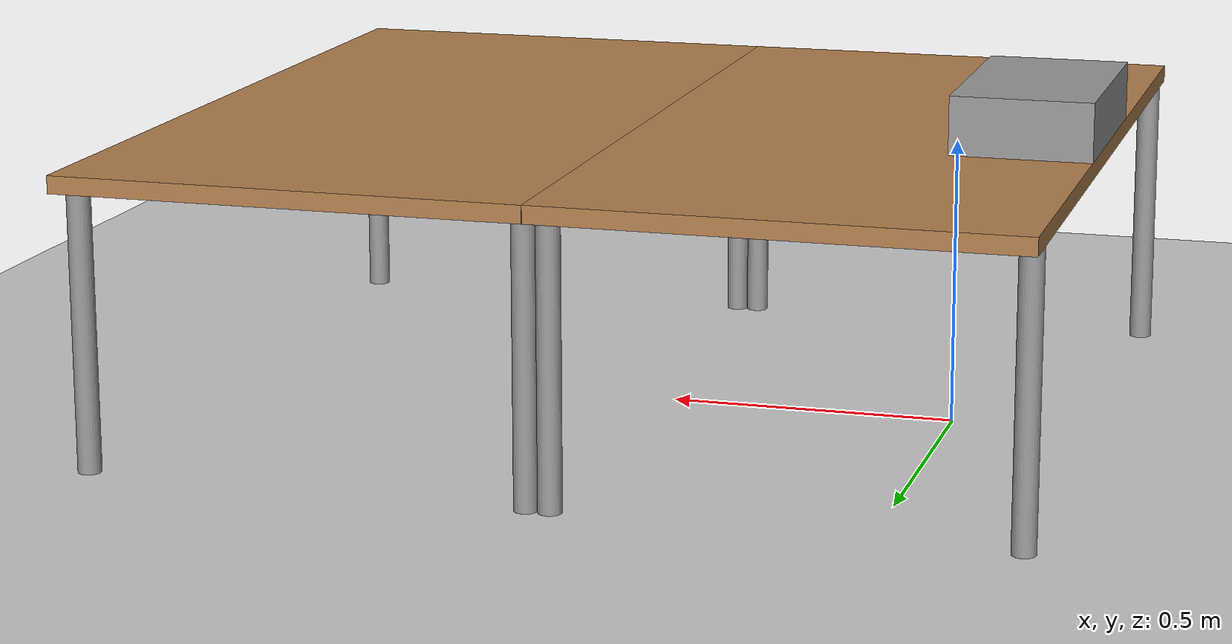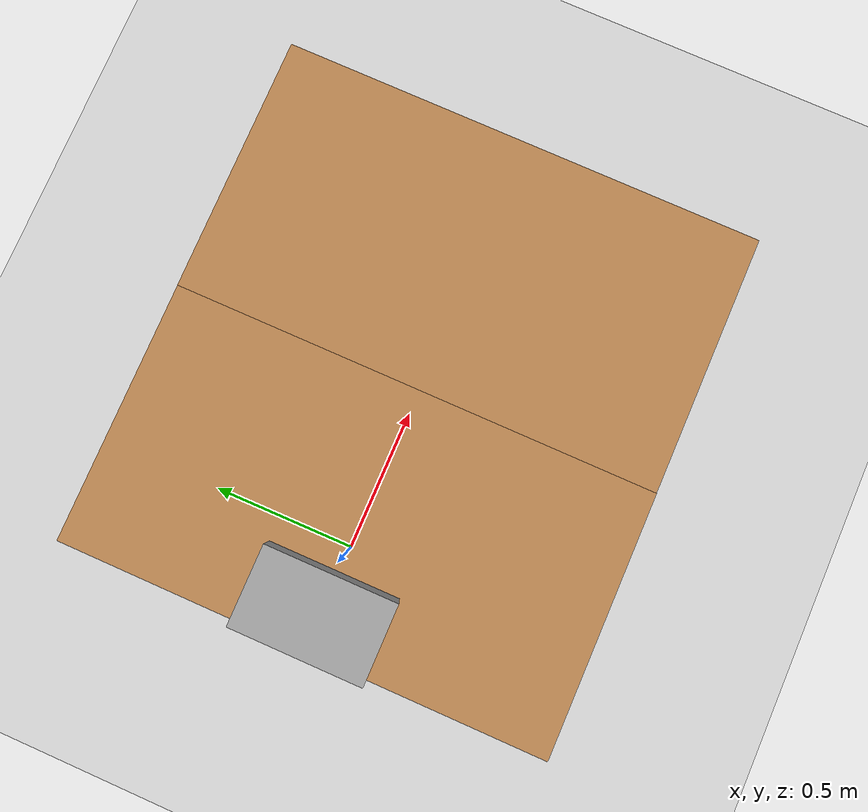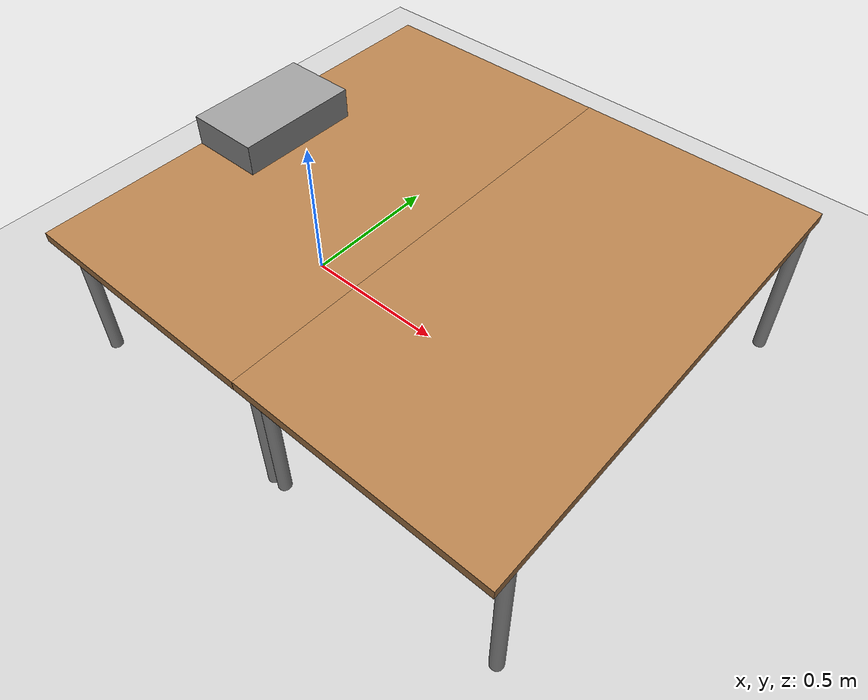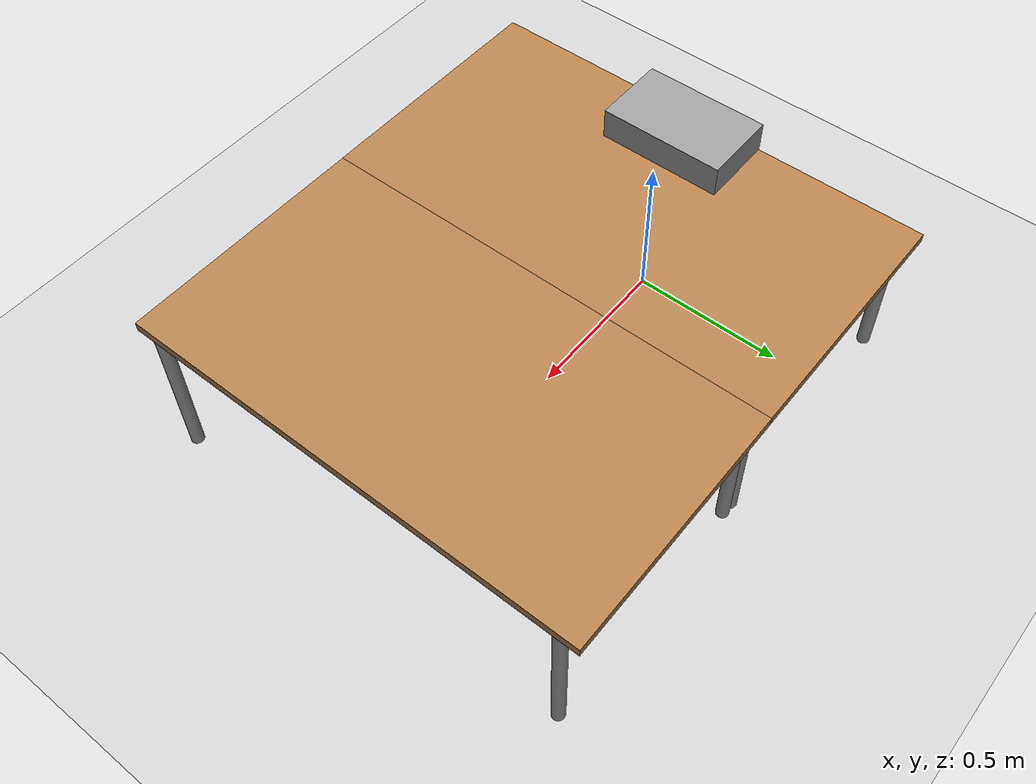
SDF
<sdf version="1.6">
 <world name="default">
  <light name="sun" type="directional">
   <pose>0 0 10 0 -0 0</pose>
   <diffuse>0.8 0.8 0.8 1</diffuse>
   <specular>0.2 0.2 0.2 1</specular>
   <attenuation>
    <range>1000</range>
    <constant>0.9</constant>
    <linear>0.01</linear>
    <quadratic>0.001</quadratic>
   </attenuation>
   <direction>-0.5 0.1 -0.9</direction>
  </light>
  <gravity>0 0 -9.8</gravity>
  <magnetic_field>6e-06 2.3e-05 -4.2e-05</magnetic_field>
  <atmosphere type="adiabatic"/>
  <physics name="default_physics" default="0" type="ode">
   <max_step_size>0.001</max_step_size>
   <real_time_factor>1</real_time_factor>
   <real_time_update_rate>1000</real_time_update_rate>
  </physics>
  <scene><ambient>0.4 0.4 0.4 1</ambient><background>0.7 0.7 0.7 1</background><shadows>1</shadows></scene>
  <audio><device>default</device></audio>
  <spherical_coordinates>
   <surface_model>EARTH_WGS84</surface_model>
   <latitude_deg>0</latitude_deg>
   <longitude_deg>0</longitude_deg>
   <elevation>0</elevation>
   <heading_deg>0</heading_deg>
  </spherical_coordinates>
  <model name="ground_plane"><include><uri>model://ground_plane</uri></include></model>
  <model name="table1">
   <include><uri>model://table</uri></include>
   <pose>0.14 0 0  0 0 1.57</pose>
   <static>true</static>
  </model>
  <model name="table2">
   <include><uri>model://table</uri></include>
   <pose>0.94 0 0  0 0 1.57</pose>
   <static>true</static>
  </model>
  <model name="unit_box">
   <include><uri>model://unit_box</uri></include>
   <pose>-0.14 0 0.565 0 0 0</pose>
   <static>true</static>
  </model>
 </world>
</sdf>

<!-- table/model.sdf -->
<sdf version='1.6'>
    <model name='table'>
      <static>1</static>
      <link name='link'>
        <collision name='surface'>
          <pose frame=''>0 0 0.5 0 -0 0</pose>
          <geometry>
            <box>
              <size>1.5 0.8 0.03</size>
            </box>
          </geometry>
          <surface>
            <friction>
              <ode>
                <mu>0.6</mu>
                <mu2>0.6</mu2>
              </ode>
              <torsional>
                <ode/>
              </torsional>
            </friction>
            <contact>
              <ode/>
            </contact>
            <bounce/>
          </surface>
          <max_contacts>10</max_contacts>
        </collision>
        <visual name='visual1'>
          <pose frame=''>0 0 0.5 0 -0 0</pose>
          <geometry>
            <box>
              <size>1.5 0.8 0.03</size>
            </box>
          </geometry>
          <material>
            <script>
              <uri>file://media/materials/scripts/gazebo.material</uri>
              <name>Gazebo/Wood</name>
            </script>
          </material>
        </visual>
        <collision name='front_left_leg'>
          <pose frame=''>0.68 0.38 0.25 0 -0 0</pose>
          <geometry>
            <cylinder>
              <radius>0.02</radius>
              <length>0.5</length>
            </cylinder>
          </geometry>
          <max_contacts>10</max_contacts>
          <surface>
            <contact>
              <ode/>
            </contact>
            <bounce/>
            <friction>
              <torsional>
                <ode/>
              </torsional>
              <ode/>
            </friction>
          </surface>
        </collision>
        <visual name='front_left_leg'>
          <pose frame=''>0.68 0.38 0.25 0 -0 0</pose>
          <geometry>
            <cylinder>
              <radius>0.02</radius>
              <length>0.5</length>
            </cylinder>
          </geometry>
          <material>
            <script>
              <uri>file://media/materials/scripts/gazebo.material</uri>
              <name>Gazebo/Grey</name>
            </script>
          </material>
        </visual>
        <collision name='front_right_leg'>
          <pose frame=''>0.68 -0.38 0.25 0 -0 0</pose>
          <geometry>
            <cylinder>
              <radius>0.02</radius>
              <length>0.5</length>
            </cylinder>
          </geometry>
          <max_contacts>10</max_contacts>
          <surface>
            <contact>
              <ode/>
            </contact>
            <bounce/>
            <friction>
              <torsional>
                <ode/>
              </torsional>
              <ode/>
            </friction>
          </surface>
        </collision>
        <visual name='front_right_leg'>
          <pose frame=''>0.68 -0.38 0.25 0 -0 0</pose>
          <geometry>
            <cylinder>
              <radius>0.02</radius>
              <length>0.5</length>
            </cylinder>
          </geometry>
          <material>
            <script>
              <uri>file://media/materials/scripts/gazebo.material</uri>
              <name>Gazebo/Grey</name>
            </script>
          </material>
        </visual>
        <collision name='back_right_leg'>
          <pose frame=''>-0.68 -0.38 0.25 0 -0 0</pose>
          <geometry>
            <cylinder>
              <radius>0.02</radius>
              <length>0.5</length>
            </cylinder>
          </geometry>
          <max_contacts>10</max_contacts>
          <surface>
            <contact>
              <ode/>
            </contact>
            <bounce/>
            <friction>
              <torsional>
                <ode/>
              </torsional>
              <ode/>
            </friction>
          </surface>
        </collision>
        <visual name='back_right_leg'>
          <pose frame=''>-0.68 -0.38 0.25 0 -0 0</pose>
          <geometry>
            <cylinder>
              <radius>0.02</radius>
              <length>0.5</length>
            </cylinder>
          </geometry>
          <material>
            <script>
              <uri>file://media/materials/scripts/gazebo.material</uri>
              <name>Gazebo/Grey</name>
            </script>
          </material>
        </visual>
        <collision name='back_left_leg'>
          <pose frame=''>-0.68 0.38 0.25 0 -0 0</pose>
          <geometry>
            <cylinder>
              <radius>0.02</radius>
              <length>0.5</length>
            </cylinder>
          </geometry>
          <max_contacts>10</max_contacts>
          <surface>
            <contact>
              <ode/>
            </contact>
            <bounce/>
            <friction>
              <torsional>
                <ode/>
              </torsional>
              <ode/>
            </friction>
          </surface>
        </collision>
        <visual name='back_left_leg'>
          <pose frame=''>-0.68 0.38 0.25 0 -0 0</pose>
          <geometry>
            <cylinder>
              <radius>0.02</radius>
              <length>0.5</length>
            </cylinder>
          </geometry>
          <material>
            <script>
              <uri>file://media/materials/scripts/gazebo.material</uri>
              <name>Gazebo/Grey</name>
            </script>
          </material>
        </visual>
        <self_collide>0</self_collide>
        <enable_wind>0</enable_wind>
        <kinematic>0</kinematic>
      </link>
    </model>
</sdf>

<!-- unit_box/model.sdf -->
<sdf version='1.6'>
    <model name='unit_box'>
      <static>1</static>
      <link name='link'>
        <inertial>
          <mass>1</mass>
          <inertia>
            <ixx>0.166667</ixx>
            <ixy>0</ixy>
            <ixz>0</ixz>
            <iyy>0.166667</iyy>
            <iyz>0</iyz>
            <izz>0.166667</izz>
          </inertia>
        </inertial>
        <visual name='visual'>
          <geometry>
            <box>
              <size>0.24 0.40 0.10</size>
            </box>
          </geometry>
          <material>
            <script>
              <name>Gazebo/Grey</name>
              <uri>file://media/materials/scripts/gazebo.material</uri>
            </script>
          </material>
        </visual>
        <collision name='visual'>
          <geometry>
            <box>
              <size>0.24 0.40 0.10</size>
            </box>
          </geometry>
        </collision>
        <self_collide>0</self_collide>
        <enable_wind>0</enable_wind>
        <kinematic>0</kinematic>
      </link>
    </model>
</sdf>
